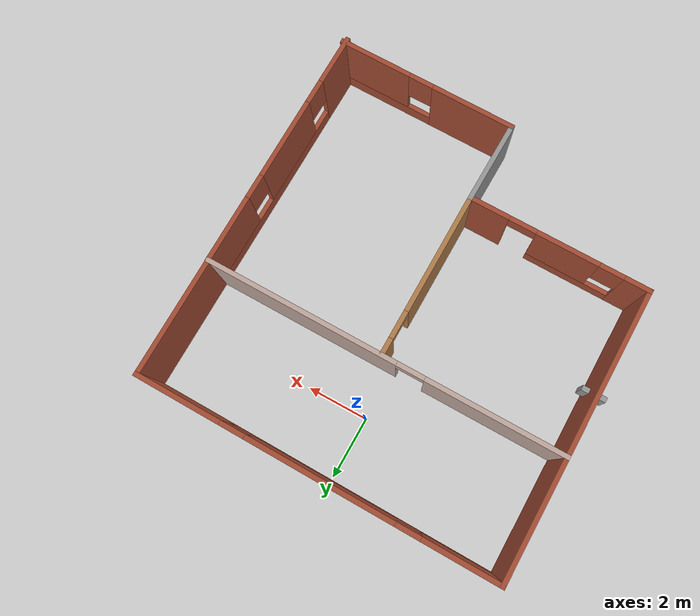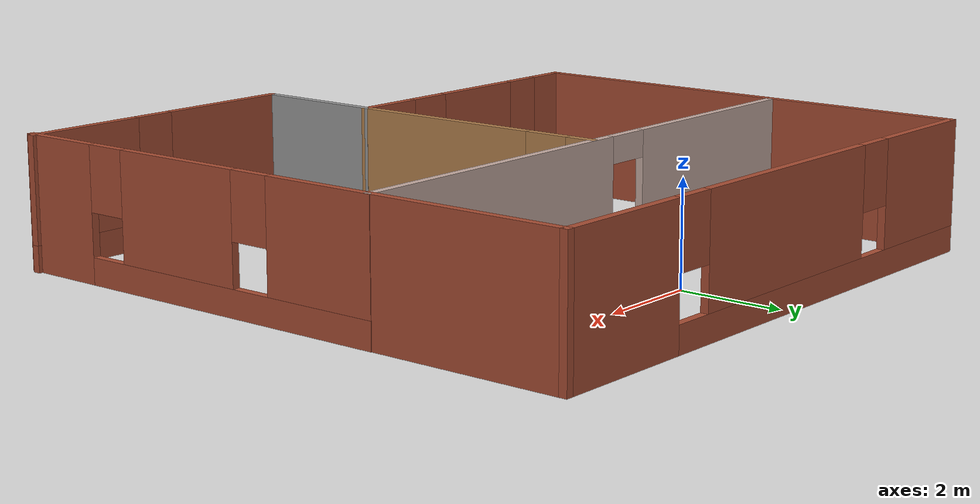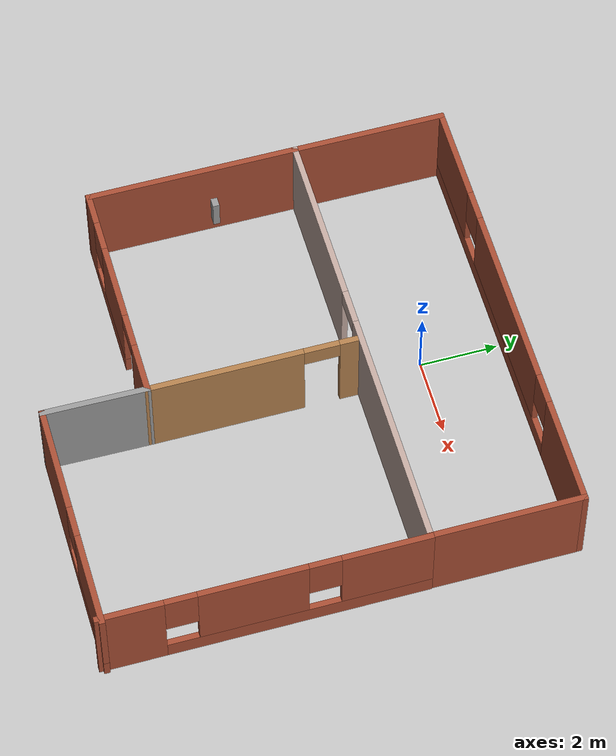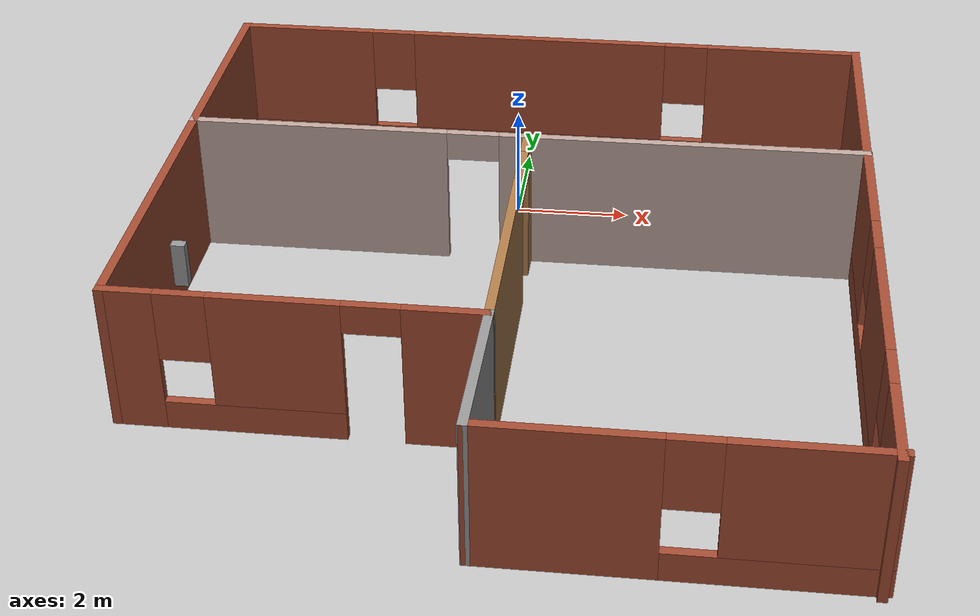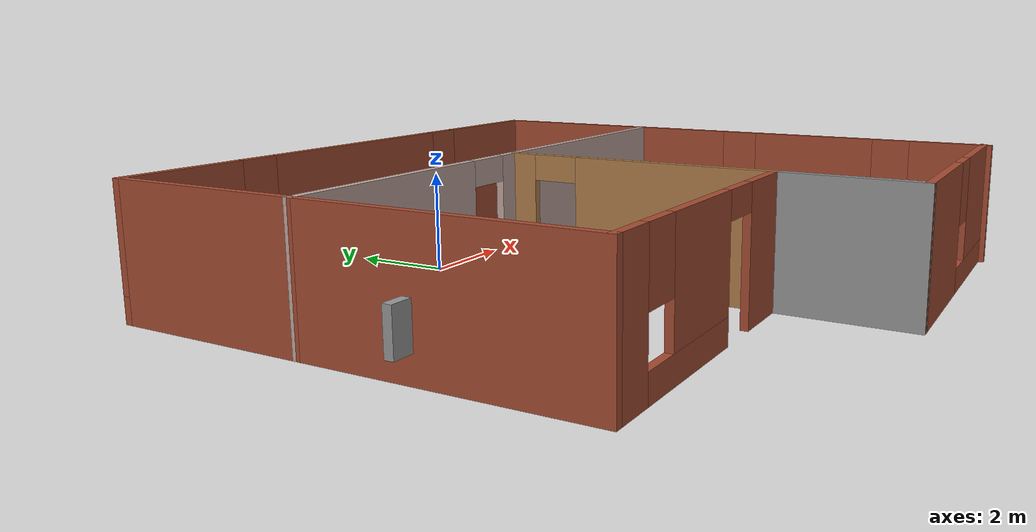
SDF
<?xml version='1.0'?>
<sdf version='1.6'>
  <model name='house3'>
    <pose frame=''>0.327397 -3.79122 0 0 -0 0</pose>
    <link name='Wall_13'>
      <collision name='Wall_13_Collision'>
        <geometry>
          <box>
            <size>4 0.15 2.5</size>
          </box>
        </geometry>
        <pose frame=''>0 0 1.25 0 -0 0</pose>
      </collision>
      <visual name='Wall_13_Visual'>
        <pose frame=''>0 0 1.25 0 -0 0</pose>
        <geometry>
          <box>
            <size>4 0.15 2.5</size>
          </box>
        </geometry>
        <material>
          <script>
            <uri>file://media/materials/scripts/gazebo.material</uri>
            <name>Gazebo/Bricks</name>
          </script>
          <ambient>1 1 1 1</ambient>
        </material>
        <meta>
          <layer>0</layer>
        </meta>
      </visual>
      <pose frame=''>-5.84236 4.02705 0 0 -0 -1.5708</pose>
    </link>
    <link name='Wall_14'>
      <pose frame=''>-0.042357 2.12498 0 0 -0 0.003953</pose>
      <visual name='Wall_14_Visual_0'>
        <pose frame=''>-3.60865 0 1.25 0 -0 0</pose>
        <geometry>
          <box>
            <size>4.53279 0.15 2.5</size>
          </box>
        </geometry>
        <material>
          <script>
            <uri>file://media/materials/scripts/gazebo.material</uri>
            <name>Gazebo/Grey</name>
          </script>
          <ambient>0.760784 0.662745 0.627451 1</ambient>
        </material>
        <meta>
          <layer>0</layer>
        </meta>
      </visual>
      <collision name='Wall_14_Collision_0'>
        <geometry>
          <box>
            <size>4.53279 0.15 2.5</size>
          </box>
        </geometry>
        <pose frame=''>-3.60865 0 1.25 0 -0 0</pose>
      </collision>
      <visual name='Wall_14_Visual_1'>
        <pose frame=''>2.7164 0 1.25 0 -0 0</pose>
        <geometry>
          <box>
            <size>6.3173 0.15 2.5</size>
          </box>
        </geometry>
        <material>
          <script>
            <uri>file://media/materials/scripts/gazebo.material</uri>
            <name>Gazebo/Grey</name>
          </script>
          <ambient>0.760784 0.662745 0.627451 1</ambient>
        </material>
        <meta>
          <layer>0</layer>
        </meta>
      </visual>
      <collision name='Wall_14_Collision_1'>
        <geometry>
          <box>
            <size>6.3173 0.15 2.5</size>
          </box>
        </geometry>
        <pose frame=''>2.7164 0 1.25 0 -0 0</pose>
      </collision>
      <visual name='Wall_14_Visual_2'>
        <pose frame=''>-0.892252 0 2.25 0 -0 0</pose>
        <geometry>
          <box>
            <size>0.9 0.15 0.5</size>
          </box>
        </geometry>
        <material>
          <script>
            <uri>file://media/materials/scripts/gazebo.material</uri>
            <name>Gazebo/Grey</name>
          </script>
          <ambient>0.760784 0.662745 0.627451 1</ambient>
        </material>
        <meta>
          <layer>0</layer>
        </meta>
      </visual>
      <collision name='Wall_14_Collision_2'>
        <geometry>
          <box>
            <size>0.9 0.15 0.5</size>
          </box>
        </geometry>
        <pose frame=''>-0.892252 0 2.25 0 -0 0</pose>
      </collision>
    </link>
    <link name='Wall_15'>
      <collision name='Wall_15_Collision'>
        <geometry>
          <box>
            <size>3.95422 0.15 2.5</size>
          </box>
        </geometry>
        <pose frame=''>0 0 1.25 0 -0 0</pose>
      </collision>
      <visual name='Wall_15_Visual'>
        <pose frame=''>0 0 1.25 0 -0 0</pose>
        <geometry>
          <box>
            <size>3.95422 0.15 2.5</size>
          </box>
        </geometry>
        <material>
          <script>
            <uri>file://media/materials/scripts/gazebo.material</uri>
            <name>Gazebo/Bricks</name>
          </script>
          <ambient>1 1 1 1</ambient>
        </material>
        <meta>
          <layer>0</layer>
        </meta>
      </visual>
      <pose frame=''>5.75764 4.04998 0 0 -0 1.5708</pose>
    </link>
    <link name='Wall_16'>
      <pose frame=''>-0.042357 5.95205 0 0 -0 3.14159</pose>
      <visual name='Wall_16_Visual_0'>
        <pose frame=''>-4.46306 0 1.25 0 -0 0</pose>
        <geometry>
          <box>
            <size>2.82388 0.15 2.5</size>
          </box>
        </geometry>
        <material>
          <script>
            <uri>file://media/materials/scripts/gazebo.material</uri>
            <name>Gazebo/Bricks</name>
          </script>
          <ambient>1 1 1 1</ambient>
        </material>
        <meta>
          <layer>0</layer>
        </meta>
      </visual>
      <collision name='Wall_16_Collision_0'>
        <geometry>
          <box>
            <size>2.82388 0.15 2.5</size>
          </box>
        </geometry>
        <pose frame=''>-4.46306 0 1.25 0 -0 0</pose>
      </collision>
      <visual name='Wall_16_Visual_1'>
        <pose frame=''>1.41194 0 0.25 0 -0 0</pose>
        <geometry>
          <box>
            <size>8.92612 0.15 0.5</size>
          </box>
        </geometry>
        <material>
          <script>
            <uri>file://media/materials/scripts/gazebo.material</uri>
            <name>Gazebo/Bricks</name>
          </script>
          <ambient>1 1 1 1</ambient>
        </material>
        <meta>
          <layer>0</layer>
        </meta>
      </visual>
      <collision name='Wall_16_Collision_1'>
        <geometry>
          <box>
            <size>8.92612 0.15 0.5</size>
          </box>
        </geometry>
        <pose frame=''>1.41194 0 0.25 0 -0 0</pose>
      </collision>
      <visual name='Wall_16_Visual_2'>
        <pose frame=''>0.137177 0 1.5 0 -0 0</pose>
        <geometry>
          <box>
            <size>4.7766 0.15 2</size>
          </box>
        </geometry>
        <material>
          <script>
            <uri>file://media/materials/scripts/gazebo.material</uri>
            <name>Gazebo/Bricks</name>
          </script>
          <ambient>1 1 1 1</ambient>
        </material>
        <meta>
          <layer>0</layer>
        </meta>
      </visual>
      <collision name='Wall_16_Collision_2'>
        <geometry>
          <box>
            <size>4.7766 0.15 2</size>
          </box>
        </geometry>
        <pose frame=''>0.137177 0 1.5 0 -0 0</pose>
      </collision>
      <visual name='Wall_16_Visual_3'>
        <pose frame=''>4.60024 0 1.5 0 -0 0</pose>
        <geometry>
          <box>
            <size>2.54953 0.15 2</size>
          </box>
        </geometry>
        <material>
          <script>
            <uri>file://media/materials/scripts/gazebo.material</uri>
            <name>Gazebo/Bricks</name>
          </script>
          <ambient>1 1 1 1</ambient>
        </material>
        <meta>
          <layer>0</layer>
        </meta>
      </visual>
      <collision name='Wall_16_Collision_3'>
        <geometry>
          <box>
            <size>2.54953 0.15 2</size>
          </box>
        </geometry>
        <pose frame=''>4.60024 0 1.5 0 -0 0</pose>
      </collision>
      <visual name='Wall_16_Visual_4'>
        <pose frame=''>-2.65112 0 1.9 0 -0 0</pose>
        <geometry>
          <box>
            <size>0.8 0.15 1.2</size>
          </box>
        </geometry>
        <material>
          <script>
            <uri>file://media/materials/scripts/gazebo.material</uri>
            <name>Gazebo/Bricks</name>
          </script>
          <ambient>1 1 1 1</ambient>
        </material>
        <meta>
          <layer>0</layer>
        </meta>
      </visual>
      <collision name='Wall_16_Collision_4'>
        <geometry>
          <box>
            <size>0.8 0.15 1.2</size>
          </box>
        </geometry>
        <pose frame=''>-2.65112 0 1.9 0 -0 0</pose>
      </collision>
      <visual name='Wall_16_Visual_5'>
        <pose frame=''>2.92548 0 1.9 0 -0 0</pose>
        <geometry>
          <box>
            <size>0.8 0.15 1.2</size>
          </box>
        </geometry>
        <material>
          <script>
            <uri>file://media/materials/scripts/gazebo.material</uri>
            <name>Gazebo/Bricks</name>
          </script>
          <ambient>1 1 1 1</ambient>
        </material>
        <meta>
          <layer>0</layer>
        </meta>
      </visual>
      <collision name='Wall_16_Collision_5'>
        <geometry>
          <box>
            <size>0.8 0.15 1.2</size>
          </box>
        </geometry>
        <pose frame=''>2.92548 0 1.9 0 -0 0</pose>
      </collision>
    </link>
    <link name='Wall_18'>
      <collision name='Wall_18_Collision'>
        <geometry>
          <box>
            <size>5.5 0.15 2.5</size>
          </box>
        </geometry>
        <pose frame=''>0 0 1.25 0 -0 0</pose>
      </collision>
      <visual name='Wall_18_Visual'>
        <pose frame=''>0 0 1.25 0 -0 0</pose>
        <geometry>
          <box>
            <size>5.5 0.15 2.5</size>
          </box>
        </geometry>
        <material>
          <script>
            <uri>file://media/materials/scripts/gazebo.material</uri>
            <name>Gazebo/Bricks</name>
          </script>
          <ambient>1 1 1 1</ambient>
        </material>
        <meta>
          <layer>0</layer>
        </meta>
      </visual>
      <pose frame=''>-5.84236 -0.572945 0 0 -0 -1.5708</pose>
    </link>
    <link name='Wall_19'>
      <pose frame=''>-2.91736 -3.24794 0 0 -0 0</pose>
      <visual name='Wall_19_Visual_0'>
        <pose frame=''>-2.55833 0 1.25 0 -0 0</pose>
        <geometry>
          <box>
            <size>0.883347 0.15 2.5</size>
          </box>
        </geometry>
        <material>
          <script>
            <uri>file://media/materials/scripts/gazebo.material</uri>
            <name>Gazebo/Bricks</name>
          </script>
          <ambient>0.760784 0.662745 0.627451 1</ambient>
        </material>
        <meta>
          <layer>0</layer>
        </meta>
      </visual>
      <collision name='Wall_19_Collision_0'>
        <geometry>
          <box>
            <size>0.883347 0.15 2.5</size>
          </box>
        </geometry>
        <pose frame=''>-2.55833 0 1.25 0 -0 0</pose>
      </collision>
      <visual name='Wall_19_Visual_1'>
        <pose frame=''>2.31276 0 1.25 0 -0 0</pose>
        <geometry>
          <box>
            <size>1.37448 0.15 2.5</size>
          </box>
        </geometry>
        <material>
          <script>
            <uri>file://media/materials/scripts/gazebo.material</uri>
            <name>Gazebo/Bricks</name>
          </script>
          <ambient>0.760784 0.662745 0.627451 1</ambient>
        </material>
        <meta>
          <layer>0</layer>
        </meta>
      </visual>
      <collision name='Wall_19_Collision_1'>
        <geometry>
          <box>
            <size>1.37448 0.15 2.5</size>
          </box>
        </geometry>
        <pose frame=''>2.31276 0 1.25 0 -0 0</pose>
      </collision>
      <visual name='Wall_19_Visual_2'>
        <pose frame=''>-0.695569 0 0.25 0 -0 0</pose>
        <geometry>
          <box>
            <size>2.84217 0.15 0.5</size>
          </box>
        </geometry>
        <material>
          <script>
            <uri>file://media/materials/scripts/gazebo.material</uri>
            <name>Gazebo/Bricks</name>
          </script>
          <ambient>0.760784 0.662745 0.627451 1</ambient>
        </material>
        <meta>
          <layer>0</layer>
        </meta>
      </visual>
      <collision name='Wall_19_Collision_2'>
        <geometry>
          <box>
            <size>2.84217 0.15 0.5</size>
          </box>
        </geometry>
        <pose frame=''>-0.695569 0 0.25 0 -0 0</pose>
      </collision>
      <visual name='Wall_19_Visual_3'>
        <pose frame=''>-0.295569 0 1.5 0 -0 0</pose>
        <geometry>
          <box>
            <size>2.04217 0.15 2</size>
          </box>
        </geometry>
        <material>
          <script>
            <uri>file://media/materials/scripts/gazebo.material</uri>
            <name>Gazebo/Bricks</name>
          </script>
          <ambient>0.760784 0.662745 0.627451 1</ambient>
        </material>
        <meta>
          <layer>0</layer>
        </meta>
      </visual>
      <collision name='Wall_19_Collision_3'>
        <geometry>
          <box>
            <size>2.04217 0.15 2</size>
          </box>
        </geometry>
        <pose frame=''>-0.295569 0 1.5 0 -0 0</pose>
      </collision>
      <visual name='Wall_19_Visual_4'>
        <pose frame=''>-1.71665 0 1.9 0 -0 0</pose>
        <geometry>
          <box>
            <size>0.8 0.15 1.2</size>
          </box>
        </geometry>
        <material>
          <script>
            <uri>file://media/materials/scripts/gazebo.material</uri>
            <name>Gazebo/Bricks</name>
          </script>
          <ambient>0.760784 0.662745 0.627451 1</ambient>
        </material>
        <meta>
          <layer>0</layer>
        </meta>
      </visual>
      <collision name='Wall_19_Collision_4'>
        <geometry>
          <box>
            <size>0.8 0.15 1.2</size>
          </box>
        </geometry>
        <pose frame=''>-1.71665 0 1.9 0 -0 0</pose>
      </collision>
      <visual name='Wall_19_Visual_5'>
        <pose frame=''>1.17552 0 2.25 0 -0 0</pose>
        <geometry>
          <box>
            <size>0.9 0.15 0.5</size>
          </box>
        </geometry>
        <material>
          <script>
            <uri>file://media/materials/scripts/gazebo.material</uri>
            <name>Gazebo/Bricks</name>
          </script>
          <ambient>0.760784 0.662745 0.627451 1</ambient>
        </material>
        <meta>
          <layer>0</layer>
        </meta>
      </visual>
      <collision name='Wall_19_Collision_5'>
        <geometry>
          <box>
            <size>0.9 0.15 0.5</size>
          </box>
        </geometry>
        <pose frame=''>1.17552 0 2.25 0 -0 0</pose>
      </collision>
    </link>
    <link name='Wall_20'>
      <pose frame=''>0.007643 -0.572945 0 0 -0 1.5708</pose>
      <visual name='Wall_20_Visual_0'>
        <pose frame=''>-0.752414 0 1.25 0 -0 0</pose>
        <geometry>
          <box>
            <size>3.99517 0.15 2.5</size>
          </box>
        </geometry>
        <material>
          <script>
            <uri>file://media/materials/scripts/gazebo.material</uri>
            <name>Gazebo/Wood</name>
          </script>
          <ambient>1 1 1 1</ambient>
        </material>
        <meta>
          <layer>0</layer>
        </meta>
      </visual>
      <collision name='Wall_20_Collision_0'>
        <geometry>
          <box>
            <size>3.99517 0.15 2.5</size>
          </box>
        </geometry>
        <pose frame=''>-0.752414 0 1.25 0 -0 0</pose>
      </collision>
      <visual name='Wall_20_Visual_1'>
        <pose frame=''>2.44759 0 1.25 0 -0 0</pose>
        <geometry>
          <box>
            <size>0.604828 0.15 2.5</size>
          </box>
        </geometry>
        <material>
          <script>
            <uri>file://media/materials/scripts/gazebo.material</uri>
            <name>Gazebo/Wood</name>
          </script>
          <ambient>1 1 1 1</ambient>
        </material>
        <meta>
          <layer>0</layer>
        </meta>
      </visual>
      <collision name='Wall_20_Collision_1'>
        <geometry>
          <box>
            <size>0.604828 0.15 2.5</size>
          </box>
        </geometry>
        <pose frame=''>2.44759 0 1.25 0 -0 0</pose>
      </collision>
      <visual name='Wall_20_Visual_2'>
        <pose frame=''>1.69517 0 2.25 0 -0 0</pose>
        <geometry>
          <box>
            <size>0.9 0.15 0.5</size>
          </box>
        </geometry>
        <material>
          <script>
            <uri>file://media/materials/scripts/gazebo.material</uri>
            <name>Gazebo/Wood</name>
          </script>
          <ambient>1 1 1 1</ambient>
        </material>
        <meta>
          <layer>0</layer>
        </meta>
      </visual>
      <collision name='Wall_20_Collision_2'>
        <geometry>
          <box>
            <size>0.9 0.15 0.5</size>
          </box>
        </geometry>
        <pose frame=''>1.69517 0 2.25 0 -0 0</pose>
      </collision>
    </link>
    <link name='Wall_22'>
      <collision name='Wall_22_Collision'>
        <geometry>
          <box>
            <size>2.75 0.15 2.5</size>
          </box>
        </geometry>
        <pose frame=''>0 0 1.25 0 -0 0</pose>
      </collision>
      <visual name='Wall_22_Visual'>
        <pose frame=''>0 0 1.25 0 -0 0</pose>
        <geometry>
          <box>
            <size>2.75 0.15 2.5</size>
          </box>
        </geometry>
        <material>
          <script>
            <uri>file://media/materials/scripts/gazebo.material</uri>
            <name>Gazebo/Grey</name>
          </script>
          <ambient>1 1 1 1</ambient>
        </material>
        <meta>
          <layer>0</layer>
        </meta>
      </visual>
      <pose frame=''>-0.007347 -4.54794 0 0 -0 -1.58233</pose>
    </link>
    <link name='Wall_24'>
      <pose frame=''>5.76911 -1.90209 0 0 -0 1.5708</pose>
      <visual name='Wall_24_Visual_0'>
        <pose frame=''>-3.28231 0 1.25 0 -0 0</pose>
        <geometry>
          <box>
            <size>1.68538 0.15 2.5</size>
          </box>
        </geometry>
        <material>
          <script>
            <uri>file://media/materials/scripts/gazebo.material</uri>
            <name>Gazebo/Bricks</name>
          </script>
          <ambient>1 1 1 1</ambient>
        </material>
        <meta>
          <layer>0</layer>
        </meta>
      </visual>
      <collision name='Wall_24_Collision_0'>
        <geometry>
          <box>
            <size>1.68538 0.15 2.5</size>
          </box>
        </geometry>
        <pose frame=''>-3.28231 0 1.25 0 -0 0</pose>
      </collision>
      <visual name='Wall_24_Visual_1'>
        <pose frame=''>0.842689 0 0.25 0 -0 0</pose>
        <geometry>
          <box>
            <size>6.56462 0.15 0.5</size>
          </box>
        </geometry>
        <material>
          <script>
            <uri>file://media/materials/scripts/gazebo.material</uri>
            <name>Gazebo/Bricks</name>
          </script>
          <ambient>1 1 1 1</ambient>
        </material>
        <meta>
          <layer>0</layer>
        </meta>
      </visual>
      <collision name='Wall_24_Collision_1'>
        <geometry>
          <box>
            <size>6.56462 0.15 0.5</size>
          </box>
        </geometry>
        <pose frame=''>0.842689 0 0.25 0 -0 0</pose>
      </collision>
      <visual name='Wall_24_Visual_2'>
        <pose frame=''>-0.288435 0 1.5 0 -0 0</pose>
        <geometry>
          <box>
            <size>2.70237 0.15 2</size>
          </box>
        </geometry>
        <material>
          <script>
            <uri>file://media/materials/scripts/gazebo.material</uri>
            <name>Gazebo/Bricks</name>
          </script>
          <ambient>1 1 1 1</ambient>
        </material>
        <meta>
          <layer>0</layer>
        </meta>
      </visual>
      <collision name='Wall_24_Collision_2'>
        <geometry>
          <box>
            <size>2.70237 0.15 2</size>
          </box>
        </geometry>
        <pose frame=''>-0.288435 0 1.5 0 -0 0</pose>
      </collision>
      <visual name='Wall_24_Visual_3'>
        <pose frame=''>2.99388 0 1.5 0 -0 0</pose>
        <geometry>
          <box>
            <size>2.26225 0.15 2</size>
          </box>
        </geometry>
        <material>
          <script>
            <uri>file://media/materials/scripts/gazebo.material</uri>
            <name>Gazebo/Bricks</name>
          </script>
          <ambient>1 1 1 1</ambient>
        </material>
        <meta>
          <layer>0</layer>
        </meta>
      </visual>
      <collision name='Wall_24_Collision_3'>
        <geometry>
          <box>
            <size>2.26225 0.15 2</size>
          </box>
        </geometry>
        <pose frame=''>2.99388 0 1.5 0 -0 0</pose>
      </collision>
      <visual name='Wall_24_Visual_4'>
        <pose frame=''>-2.03962 0 1.9 0 -0 0</pose>
        <geometry>
          <box>
            <size>0.8 0.15 1.2</size>
          </box>
        </geometry>
        <material>
          <script>
            <uri>file://media/materials/scripts/gazebo.material</uri>
            <name>Gazebo/Bricks</name>
          </script>
          <ambient>1 1 1 1</ambient>
        </material>
        <meta>
          <layer>0</layer>
        </meta>
      </visual>
      <collision name='Wall_24_Collision_4'>
        <geometry>
          <box>
            <size>0.8 0.15 1.2</size>
          </box>
        </geometry>
        <pose frame=''>-2.03962 0 1.9 0 -0 0</pose>
      </collision>
      <visual name='Wall_24_Visual_5'>
        <pose frame=''>1.46275 0 1.9 0 -0 0</pose>
        <geometry>
          <box>
            <size>0.8 0.15 1.2</size>
          </box>
        </geometry>
        <material>
          <script>
            <uri>file://media/materials/scripts/gazebo.material</uri>
            <name>Gazebo/Bricks</name>
          </script>
          <ambient>1 1 1 1</ambient>
        </material>
        <meta>
          <layer>0</layer>
        </meta>
      </visual>
      <collision name='Wall_24_Collision_5'>
        <geometry>
          <box>
            <size>0.8 0.15 1.2</size>
          </box>
        </geometry>
        <pose frame=''>1.46275 0 1.9 0 -0 0</pose>
      </collision>
    </link>
    <link name='Wall_26'>
      <pose frame=''>2.91765 -5.84794 0 0 -0 0</pose>
      <visual name='Wall_26_Visual_0'>
        <pose frame=''>-1.61642 0 1.25 0 -0 0</pose>
        <geometry>
          <box>
            <size>2.76716 0.15 2.5</size>
          </box>
        </geometry>
        <material>
          <script>
            <uri>file://media/materials/scripts/gazebo.material</uri>
            <name>Gazebo/Bricks</name>
          </script>
          <ambient>1 1 1 1</ambient>
        </material>
        <meta>
          <layer>0</layer>
        </meta>
      </visual>
      <collision name='Wall_26_Collision_0'>
        <geometry>
          <box>
            <size>2.76716 0.15 2.5</size>
          </box>
        </geometry>
        <pose frame=''>-1.61642 0 1.25 0 -0 0</pose>
      </collision>
      <visual name='Wall_26_Visual_1'>
        <pose frame=''>1.38358 0 0.25 0 -0 0</pose>
        <geometry>
          <box>
            <size>3.23284 0.15 0.5</size>
          </box>
        </geometry>
        <material>
          <script>
            <uri>file://media/materials/scripts/gazebo.material</uri>
            <name>Gazebo/Bricks</name>
          </script>
          <ambient>1 1 1 1</ambient>
        </material>
        <meta>
          <layer>0</layer>
        </meta>
      </visual>
      <collision name='Wall_26_Collision_1'>
        <geometry>
          <box>
            <size>3.23284 0.15 0.5</size>
          </box>
        </geometry>
        <pose frame=''>1.38358 0 0.25 0 -0 0</pose>
      </collision>
      <visual name='Wall_26_Visual_2'>
        <pose frame=''>1.78358 0 1.5 0 -0 0</pose>
        <geometry>
          <box>
            <size>2.43284 0.15 2</size>
          </box>
        </geometry>
        <material>
          <script>
            <uri>file://media/materials/scripts/gazebo.material</uri>
            <name>Gazebo/Bricks</name>
          </script>
          <ambient>1 1 1 1</ambient>
        </material>
        <meta>
          <layer>0</layer>
        </meta>
      </visual>
      <collision name='Wall_26_Collision_2'>
        <geometry>
          <box>
            <size>2.43284 0.15 2</size>
          </box>
        </geometry>
        <pose frame=''>1.78358 0 1.5 0 -0 0</pose>
      </collision>
      <visual name='Wall_26_Visual_3'>
        <pose frame=''>0.167161 0 1.9 0 -0 0</pose>
        <geometry>
          <box>
            <size>0.8 0.15 1.2</size>
          </box>
        </geometry>
        <material>
          <script>
            <uri>file://media/materials/scripts/gazebo.material</uri>
            <name>Gazebo/Bricks</name>
          </script>
          <ambient>1 1 1 1</ambient>
        </material>
        <meta>
          <layer>0</layer>
        </meta>
      </visual>
      <collision name='Wall_26_Collision_3'>
        <geometry>
          <box>
            <size>0.8 0.15 1.2</size>
          </box>
        </geometry>
        <pose frame=''>0.167161 0 1.9 0 -0 0</pose>
      </collision>
    </link>
    <link name='Window_4'>
      <collision name='Window_4_Collision'>
        <geometry>
          <box>
            <size>0.8 0.17 0.8</size>
          </box>
        </geometry>
        <pose frame=''>0 0 0.4 0 -0 0</pose>
      </collision>
      <visual name='Window_4_Visual'>
        <pose frame=''>0 0 0.4 0 -0 0</pose>
        <geometry>
          <box>
            <size>0.8 0.17 0.8</size>
          </box>
        </geometry>
        <material>
          <script>
            <uri>file://media/materials/scripts/gazebo.material</uri>
            <name>Gazebo/Grey</name>
          </script>
        </material>
      </visual>
      <pose frame=''>-5.92615 -0.065298 0.5 0 -0 0</pose>
    </link>
    <static>1</static>
  </model>
</sdf>
